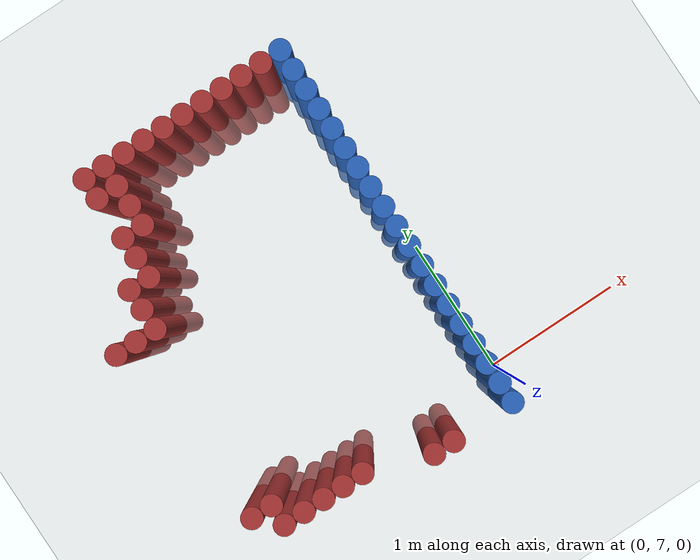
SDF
<sdf version="1.6">
 <world name="default">
  <model name="ground_plane">
   <static>1</static>
   <link name="link">
    <collision name="collision">
     <geometry><plane><normal>0 0 1</normal><size>100 100</size></plane></geometry>
     <surface><friction><ode><mu>100</mu><mu2>50</mu2></ode></friction></surface>
    </collision>
    <visual name="visual">
     <cast_shadows>0</cast_shadows>
     <geometry><plane><normal>0 0 1</normal><size>100 100</size></plane></geometry>
     <material>
      <script><uri>file://media/materials/scripts/gazebo.material</uri><name>Gazebo/Grey</name></script>
     </material>
    </visual>
   </link>
  </model>
  <model name="unit_cylinder_214">
   <static>1</static>
   <pose>-2.025000 8.475000 0.000000 0.000000 0.000000 0.000000</pose>
   <link name="link">
    <inertial>
     <mass>1</mass>
     <inertia><ixx>0.145833</ixx><ixy>0</ixy><ixz>0</ixz><iyy>0.145833</iyy><iyz>0</iyz><izz>0.125</izz></inertia>
    </inertial>
    <collision name="collision">
     <geometry><cylinder><radius>0.075000</radius><length>1</length></cylinder></geometry>
    </collision>
    <visual name="visual">
     <geometry><cylinder><radius>0.075000</radius><length>1</length></cylinder></geometry>
     <material>
      <ambient>0.648000 0.192000 0.192000 1</ambient>
      <diffuse>0.648000 0.192000 0.192000 1</diffuse>
     </material>
     <material>
      <script><name>Gazebo/Grey</name><uri>file://media/materials/scripts/gazebo.material</uri></script>
     </material>
    </visual>
   </link>
  </model>
  <model name="unit_cylinder_221">
   <static>1</static>
   <pose>-1.875000 7.125000 0.000000 0.000000 0.000000 0.000000</pose>
   <link name="link">
    <inertial>
     <mass>1</mass>
     <inertia><ixx>0.145833</ixx><ixy>0</ixy><ixz>0</ixz><iyy>0.145833</iyy><iyz>0</iyz><izz>0.125</izz></inertia>
    </inertial>
    <collision name="collision">
     <geometry><cylinder><radius>0.075000</radius><length>1</length></cylinder></geometry>
    </collision>
    <visual name="visual">
     <geometry><cylinder><radius>0.075000</radius><length>1</length></cylinder></geometry>
     <material>
      <ambient>0.648000 0.192000 0.192000 1</ambient>
      <diffuse>0.648000 0.192000 0.192000 1</diffuse>
     </material>
     <material>
      <script><name>Gazebo/Grey</name><uri>file://media/materials/scripts/gazebo.material</uri></script>
     </material>
    </visual>
   </link>
  </model>
  <model name="unit_cylinder_222">
   <static>1</static>
   <pose>-1.875000 8.475000 0.000000 0.000000 0.000000 0.000000</pose>
   <link name="link">
    <inertial>
     <mass>1</mass>
     <inertia><ixx>0.145833</ixx><ixy>0</ixy><ixz>0</ixz><iyy>0.145833</iyy><iyz>0</iyz><izz>0.125</izz></inertia>
    </inertial>
    <collision name="collision">
     <geometry><cylinder><radius>0.075000</radius><length>1</length></cylinder></geometry>
    </collision>
    <visual name="visual">
     <geometry><cylinder><radius>0.075000</radius><length>1</length></cylinder></geometry>
     <material>
      <ambient>0.648000 0.192000 0.192000 1</ambient>
      <diffuse>0.648000 0.192000 0.192000 1</diffuse>
     </material>
     <material>
      <script><name>Gazebo/Grey</name><uri>file://media/materials/scripts/gazebo.material</uri></script>
     </material>
    </visual>
   </link>
  </model>
  <model name="unit_cylinder_229">
   <static>1</static>
   <pose>-1.725000 6.975000 0.000000 0.000000 0.000000 0.000000</pose>
   <link name="link">
    <inertial>
     <mass>1</mass>
     <inertia><ixx>0.145833</ixx><ixy>0</ixy><ixz>0</ixz><iyy>0.145833</iyy><iyz>0</iyz><izz>0.125</izz></inertia>
    </inertial>
    <collision name="collision">
     <geometry><cylinder><radius>0.075000</radius><length>1</length></cylinder></geometry>
    </collision>
    <visual name="visual">
     <geometry><cylinder><radius>0.075000</radius><length>1</length></cylinder></geometry>
     <material>
      <ambient>0.648000 0.192000 0.192000 1</ambient>
      <diffuse>0.648000 0.192000 0.192000 1</diffuse>
     </material>
     <material>
      <script><name>Gazebo/Grey</name><uri>file://media/materials/scripts/gazebo.material</uri></script>
     </material>
    </visual>
   </link>
  </model>
  <model name="unit_cylinder_230">
   <static>1</static>
   <pose>-1.725000 7.125000 0.000000 0.000000 0.000000 0.000000</pose>
   <link name="link">
    <inertial>
     <mass>1</mass>
     <inertia><ixx>0.145833</ixx><ixy>0</ixy><ixz>0</ixz><iyy>0.145833</iyy><iyz>0</iyz><izz>0.125</izz></inertia>
    </inertial>
    <collision name="collision">
     <geometry><cylinder><radius>0.075000</radius><length>1</length></cylinder></geometry>
    </collision>
    <visual name="visual">
     <geometry><cylinder><radius>0.075000</radius><length>1</length></cylinder></geometry>
     <material>
      <ambient>0.648000 0.192000 0.192000 1</ambient>
      <diffuse>0.648000 0.192000 0.192000 1</diffuse>
     </material>
     <material>
      <script><name>Gazebo/Grey</name><uri>file://media/materials/scripts/gazebo.material</uri></script>
     </material>
    </visual>
   </link>
  </model>
  <model name="unit_cylinder_231">
   <static>1</static>
   <pose>-1.725000 8.475000 0.000000 0.000000 0.000000 0.000000</pose>
   <link name="link">
    <inertial>
     <mass>1</mass>
     <inertia><ixx>0.145833</ixx><ixy>0</ixy><ixz>0</ixz><iyy>0.145833</iyy><iyz>0</iyz><izz>0.125</izz></inertia>
    </inertial>
    <collision name="collision">
     <geometry><cylinder><radius>0.075000</radius><length>1</length></cylinder></geometry>
    </collision>
    <visual name="visual">
     <geometry><cylinder><radius>0.075000</radius><length>1</length></cylinder></geometry>
     <material>
      <ambient>0.648000 0.192000 0.192000 1</ambient>
      <diffuse>0.648000 0.192000 0.192000 1</diffuse>
     </material>
     <material>
      <script><name>Gazebo/Grey</name><uri>file://media/materials/scripts/gazebo.material</uri></script>
     </material>
    </visual>
   </link>
  </model>
  <model name="unit_cylinder_232">
   <static>1</static>
   <pose>-1.725000 8.625000 0.000000 0.000000 0.000000 0.000000</pose>
   <link name="link">
    <inertial>
     <mass>1</mass>
     <inertia><ixx>0.145833</ixx><ixy>0</ixy><ixz>0</ixz><iyy>0.145833</iyy><iyz>0</iyz><izz>0.125</izz></inertia>
    </inertial>
    <collision name="collision">
     <geometry><cylinder><radius>0.075000</radius><length>1</length></cylinder></geometry>
    </collision>
    <visual name="visual">
     <geometry><cylinder><radius>0.075000</radius><length>1</length></cylinder></geometry>
     <material>
      <ambient>0.648000 0.192000 0.192000 1</ambient>
      <diffuse>0.648000 0.192000 0.192000 1</diffuse>
     </material>
     <material>
      <script><name>Gazebo/Grey</name><uri>file://media/materials/scripts/gazebo.material</uri></script>
     </material>
    </visual>
   </link>
  </model>
  <model name="unit_cylinder_233">
   <static>1</static>
   <pose>-1.725000 8.775000 0.000000 0.000000 0.000000 0.000000</pose>
   <link name="link">
    <inertial>
     <mass>1</mass>
     <inertia><ixx>0.145833</ixx><ixy>0</ixy><ixz>0</ixz><iyy>0.145833</iyy><iyz>0</iyz><izz>0.125</izz></inertia>
    </inertial>
    <collision name="collision">
     <geometry><cylinder><radius>0.075000</radius><length>1</length></cylinder></geometry>
    </collision>
    <visual name="visual">
     <geometry><cylinder><radius>0.075000</radius><length>1</length></cylinder></geometry>
     <material>
      <ambient>0.648000 0.192000 0.192000 1</ambient>
      <diffuse>0.648000 0.192000 0.192000 1</diffuse>
     </material>
     <material>
      <script><name>Gazebo/Grey</name><uri>file://media/materials/scripts/gazebo.material</uri></script>
     </material>
    </visual>
   </link>
  </model>
  <model name="unit_cylinder_244">
   <static>1</static>
   <pose>-1.575000 6.975000 0.000000 0.000000 0.000000 0.000000</pose>
   <link name="link">
    <inertial>
     <mass>1</mass>
     <inertia><ixx>0.145833</ixx><ixy>0</ixy><ixz>0</ixz><iyy>0.145833</iyy><iyz>0</iyz><izz>0.125</izz></inertia>
    </inertial>
    <collision name="collision">
     <geometry><cylinder><radius>0.075000</radius><length>1</length></cylinder></geometry>
    </collision>
    <visual name="visual">
     <geometry><cylinder><radius>0.075000</radius><length>1</length></cylinder></geometry>
     <material>
      <ambient>0.648000 0.192000 0.192000 1</ambient>
      <diffuse>0.648000 0.192000 0.192000 1</diffuse>
     </material>
     <material>
      <script><name>Gazebo/Grey</name><uri>file://media/materials/scripts/gazebo.material</uri></script>
     </material>
    </visual>
   </link>
  </model>
  <model name="unit_cylinder_245">
   <static>1</static>
   <pose>-1.575000 8.775000 0.000000 0.000000 0.000000 0.000000</pose>
   <link name="link">
    <inertial>
     <mass>1</mass>
     <inertia><ixx>0.145833</ixx><ixy>0</ixy><ixz>0</ixz><iyy>0.145833</iyy><iyz>0</iyz><izz>0.125</izz></inertia>
    </inertial>
    <collision name="collision">
     <geometry><cylinder><radius>0.075000</radius><length>1</length></cylinder></geometry>
    </collision>
    <visual name="visual">
     <geometry><cylinder><radius>0.075000</radius><length>1</length></cylinder></geometry>
     <material>
      <ambient>0.648000 0.192000 0.192000 1</ambient>
      <diffuse>0.648000 0.192000 0.192000 1</diffuse>
     </material>
     <material>
      <script><name>Gazebo/Grey</name><uri>file://media/materials/scripts/gazebo.material</uri></script>
     </material>
    </visual>
   </link>
  </model>
  <model name="unit_cylinder_246">
   <static>1</static>
   <pose>-1.575000 8.925000 0.000000 0.000000 0.000000 0.000000</pose>
   <link name="link">
    <inertial>
     <mass>1</mass>
     <inertia><ixx>0.145833</ixx><ixy>0</ixy><ixz>0</ixz><iyy>0.145833</iyy><iyz>0</iyz><izz>0.125</izz></inertia>
    </inertial>
    <collision name="collision">
     <geometry><cylinder><radius>0.075000</radius><length>1</length></cylinder></geometry>
    </collision>
    <visual name="visual">
     <geometry><cylinder><radius>0.075000</radius><length>1</length></cylinder></geometry>
     <material>
      <ambient>0.648000 0.192000 0.192000 1</ambient>
      <diffuse>0.648000 0.192000 0.192000 1</diffuse>
     </material>
     <material>
      <script><name>Gazebo/Grey</name><uri>file://media/materials/scripts/gazebo.material</uri></script>
     </material>
    </visual>
   </link>
  </model>
  <model name="unit_cylinder_247">
   <static>1</static>
   <pose>-1.575000 9.075000 0.000000 0.000000 0.000000 0.000000</pose>
   <link name="link">
    <inertial>
     <mass>1</mass>
     <inertia><ixx>0.145833</ixx><ixy>0</ixy><ixz>0</ixz><iyy>0.145833</iyy><iyz>0</iyz><izz>0.125</izz></inertia>
    </inertial>
    <collision name="collision">
     <geometry><cylinder><radius>0.075000</radius><length>1</length></cylinder></geometry>
    </collision>
    <visual name="visual">
     <geometry><cylinder><radius>0.075000</radius><length>1</length></cylinder></geometry>
     <material>
      <ambient>0.648000 0.192000 0.192000 1</ambient>
      <diffuse>0.648000 0.192000 0.192000 1</diffuse>
     </material>
     <material>
      <script><name>Gazebo/Grey</name><uri>file://media/materials/scripts/gazebo.material</uri></script>
     </material>
    </visual>
   </link>
  </model>
  <model name="unit_cylinder_248">
   <static>1</static>
   <pose>-1.575000 9.375000 0.000000 0.000000 0.000000 0.000000</pose>
   <link name="link">
    <inertial>
     <mass>1</mass>
     <inertia><ixx>0.145833</ixx><ixy>0</ixy><ixz>0</ixz><iyy>0.145833</iyy><iyz>0</iyz><izz>0.125</izz></inertia>
    </inertial>
    <collision name="collision">
     <geometry><cylinder><radius>0.075000</radius><length>1</length></cylinder></geometry>
    </collision>
    <visual name="visual">
     <geometry><cylinder><radius>0.075000</radius><length>1</length></cylinder></geometry>
     <material>
      <ambient>0.648000 0.192000 0.192000 1</ambient>
      <diffuse>0.648000 0.192000 0.192000 1</diffuse>
     </material>
     <material>
      <script><name>Gazebo/Grey</name><uri>file://media/materials/scripts/gazebo.material</uri></script>
     </material>
    </visual>
   </link>
  </model>
  <model name="unit_cylinder_249">
   <static>1</static>
   <pose>-1.575000 9.525000 0.000000 0.000000 0.000000 0.000000</pose>
   <link name="link">
    <inertial>
     <mass>1</mass>
     <inertia><ixx>0.145833</ixx><ixy>0</ixy><ixz>0</ixz><iyy>0.145833</iyy><iyz>0</iyz><izz>0.125</izz></inertia>
    </inertial>
    <collision name="collision">
     <geometry><cylinder><radius>0.075000</radius><length>1</length></cylinder></geometry>
    </collision>
    <visual name="visual">
     <geometry><cylinder><radius>0.075000</radius><length>1</length></cylinder></geometry>
     <material>
      <ambient>0.648000 0.192000 0.192000 1</ambient>
      <diffuse>0.648000 0.192000 0.192000 1</diffuse>
     </material>
     <material>
      <script><name>Gazebo/Grey</name><uri>file://media/materials/scripts/gazebo.material</uri></script>
     </material>
    </visual>
   </link>
  </model>
  <model name="unit_cylinder_258">
   <static>1</static>
   <pose>-1.425000 6.975000 0.000000 0.000000 0.000000 0.000000</pose>
   <link name="link">
    <inertial>
     <mass>1</mass>
     <inertia><ixx>0.145833</ixx><ixy>0</ixy><ixz>0</ixz><iyy>0.145833</iyy><iyz>0</iyz><izz>0.125</izz></inertia>
    </inertial>
    <collision name="collision">
     <geometry><cylinder><radius>0.075000</radius><length>1</length></cylinder></geometry>
    </collision>
    <visual name="visual">
     <geometry><cylinder><radius>0.075000</radius><length>1</length></cylinder></geometry>
     <material>
      <ambient>0.648000 0.192000 0.192000 1</ambient>
      <diffuse>0.648000 0.192000 0.192000 1</diffuse>
     </material>
     <material>
      <script><name>Gazebo/Grey</name><uri>file://media/materials/scripts/gazebo.material</uri></script>
     </material>
    </visual>
   </link>
  </model>
  <model name="unit_cylinder_259">
   <static>1</static>
   <pose>-1.425000 9.075000 0.000000 0.000000 0.000000 0.000000</pose>
   <link name="link">
    <inertial>
     <mass>1</mass>
     <inertia><ixx>0.145833</ixx><ixy>0</ixy><ixz>0</ixz><iyy>0.145833</iyy><iyz>0</iyz><izz>0.125</izz></inertia>
    </inertial>
    <collision name="collision">
     <geometry><cylinder><radius>0.075000</radius><length>1</length></cylinder></geometry>
    </collision>
    <visual name="visual">
     <geometry><cylinder><radius>0.075000</radius><length>1</length></cylinder></geometry>
     <material>
      <ambient>0.648000 0.192000 0.192000 1</ambient>
      <diffuse>0.648000 0.192000 0.192000 1</diffuse>
     </material>
     <material>
      <script><name>Gazebo/Grey</name><uri>file://media/materials/scripts/gazebo.material</uri></script>
     </material>
    </visual>
   </link>
  </model>
  <model name="unit_cylinder_260">
   <static>1</static>
   <pose>-1.425000 9.225000 0.000000 0.000000 0.000000 0.000000</pose>
   <link name="link">
    <inertial>
     <mass>1</mass>
     <inertia><ixx>0.145833</ixx><ixy>0</ixy><ixz>0</ixz><iyy>0.145833</iyy><iyz>0</iyz><izz>0.125</izz></inertia>
    </inertial>
    <collision name="collision">
     <geometry><cylinder><radius>0.075000</radius><length>1</length></cylinder></geometry>
    </collision>
    <visual name="visual">
     <geometry><cylinder><radius>0.075000</radius><length>1</length></cylinder></geometry>
     <material>
      <ambient>0.648000 0.192000 0.192000 1</ambient>
      <diffuse>0.648000 0.192000 0.192000 1</diffuse>
     </material>
     <material>
      <script><name>Gazebo/Grey</name><uri>file://media/materials/scripts/gazebo.material</uri></script>
     </material>
    </visual>
   </link>
  </model>
  <model name="unit_cylinder_261">
   <static>1</static>
   <pose>-1.425000 9.375000 0.000000 0.000000 0.000000 0.000000</pose>
   <link name="link">
    <inertial>
     <mass>1</mass>
     <inertia><ixx>0.145833</ixx><ixy>0</ixy><ixz>0</ixz><iyy>0.145833</iyy><iyz>0</iyz><izz>0.125</izz></inertia>
    </inertial>
    <collision name="collision">
     <geometry><cylinder><radius>0.075000</radius><length>1</length></cylinder></geometry>
    </collision>
    <visual name="visual">
     <geometry><cylinder><radius>0.075000</radius><length>1</length></cylinder></geometry>
     <material>
      <ambient>0.648000 0.192000 0.192000 1</ambient>
      <diffuse>0.648000 0.192000 0.192000 1</diffuse>
     </material>
     <material>
      <script><name>Gazebo/Grey</name><uri>file://media/materials/scripts/gazebo.material</uri></script>
     </material>
    </visual>
   </link>
  </model>
  <model name="unit_cylinder_262">
   <static>1</static>
   <pose>-1.425000 9.525000 0.000000 0.000000 0.000000 0.000000</pose>
   <link name="link">
    <inertial>
     <mass>1</mass>
     <inertia><ixx>0.145833</ixx><ixy>0</ixy><ixz>0</ixz><iyy>0.145833</iyy><iyz>0</iyz><izz>0.125</izz></inertia>
    </inertial>
    <collision name="collision">
     <geometry><cylinder><radius>0.075000</radius><length>1</length></cylinder></geometry>
    </collision>
    <visual name="visual">
     <geometry><cylinder><radius>0.075000</radius><length>1</length></cylinder></geometry>
     <material>
      <ambient>0.648000 0.192000 0.192000 1</ambient>
      <diffuse>0.648000 0.192000 0.192000 1</diffuse>
     </material>
     <material>
      <script><name>Gazebo/Grey</name><uri>file://media/materials/scripts/gazebo.material</uri></script>
     </material>
    </visual>
   </link>
  </model>
  <model name="unit_cylinder_264">
   <static>1</static>
   <pose>-1.275000 6.975000 0.000000 0.000000 0.000000 0.000000</pose>
   <link name="link">
    <inertial>
     <mass>1</mass>
     <inertia><ixx>0.145833</ixx><ixy>0</ixy><ixz>0</ixz><iyy>0.145833</iyy><iyz>0</iyz><izz>0.125</izz></inertia>
    </inertial>
    <collision name="collision">
     <geometry><cylinder><radius>0.075000</radius><length>1</length></cylinder></geometry>
    </collision>
    <visual name="visual">
     <geometry><cylinder><radius>0.075000</radius><length>1</length></cylinder></geometry>
     <material>
      <ambient>0.648000 0.192000 0.192000 1</ambient>
      <diffuse>0.648000 0.192000 0.192000 1</diffuse>
     </material>
     <material>
      <script><name>Gazebo/Grey</name><uri>file://media/materials/scripts/gazebo.material</uri></script>
     </material>
    </visual>
   </link>
  </model>
  <model name="unit_cylinder_265">
   <static>1</static>
   <pose>-1.275000 9.525000 0.000000 0.000000 0.000000 0.000000</pose>
   <link name="link">
    <inertial>
     <mass>1</mass>
     <inertia><ixx>0.145833</ixx><ixy>0</ixy><ixz>0</ixz><iyy>0.145833</iyy><iyz>0</iyz><izz>0.125</izz></inertia>
    </inertial>
    <collision name="collision">
     <geometry><cylinder><radius>0.075000</radius><length>1</length></cylinder></geometry>
    </collision>
    <visual name="visual">
     <geometry><cylinder><radius>0.075000</radius><length>1</length></cylinder></geometry>
     <material>
      <ambient>0.648000 0.192000 0.192000 1</ambient>
      <diffuse>0.648000 0.192000 0.192000 1</diffuse>
     </material>
     <material>
      <script><name>Gazebo/Grey</name><uri>file://media/materials/scripts/gazebo.material</uri></script>
     </material>
    </visual>
   </link>
  </model>
  <model name="unit_cylinder_270">
   <static>1</static>
   <pose>-1.125000 6.975000 0.000000 0.000000 0.000000 0.000000</pose>
   <link name="link">
    <inertial>
     <mass>1</mass>
     <inertia><ixx>0.145833</ixx><ixy>0</ixy><ixz>0</ixz><iyy>0.145833</iyy><iyz>0</iyz><izz>0.125</izz></inertia>
    </inertial>
    <collision name="collision">
     <geometry><cylinder><radius>0.075000</radius><length>1</length></cylinder></geometry>
    </collision>
    <visual name="visual">
     <geometry><cylinder><radius>0.075000</radius><length>1</length></cylinder></geometry>
     <material>
      <ambient>0.648000 0.192000 0.192000 1</ambient>
      <diffuse>0.648000 0.192000 0.192000 1</diffuse>
     </material>
     <material>
      <script><name>Gazebo/Grey</name><uri>file://media/materials/scripts/gazebo.material</uri></script>
     </material>
    </visual>
   </link>
  </model>
  <model name="unit_cylinder_271">
   <static>1</static>
   <pose>-1.125000 9.525000 0.000000 0.000000 0.000000 0.000000</pose>
   <link name="link">
    <inertial>
     <mass>1</mass>
     <inertia><ixx>0.145833</ixx><ixy>0</ixy><ixz>0</ixz><iyy>0.145833</iyy><iyz>0</iyz><izz>0.125</izz></inertia>
    </inertial>
    <collision name="collision">
     <geometry><cylinder><radius>0.075000</radius><length>1</length></cylinder></geometry>
    </collision>
    <visual name="visual">
     <geometry><cylinder><radius>0.075000</radius><length>1</length></cylinder></geometry>
     <material>
      <ambient>0.648000 0.192000 0.192000 1</ambient>
      <diffuse>0.648000 0.192000 0.192000 1</diffuse>
     </material>
     <material>
      <script><name>Gazebo/Grey</name><uri>file://media/materials/scripts/gazebo.material</uri></script>
     </material>
    </visual>
   </link>
  </model>
  <model name="unit_cylinder_280">
   <static>1</static>
   <pose>-0.975000 9.525000 0.000000 0.000000 0.000000 0.000000</pose>
   <link name="link">
    <inertial>
     <mass>1</mass>
     <inertia><ixx>0.145833</ixx><ixy>0</ixy><ixz>0</ixz><iyy>0.145833</iyy><iyz>0</iyz><izz>0.125</izz></inertia>
    </inertial>
    <collision name="collision">
     <geometry><cylinder><radius>0.075000</radius><length>1</length></cylinder></geometry>
    </collision>
    <visual name="visual">
     <geometry><cylinder><radius>0.075000</radius><length>1</length></cylinder></geometry>
     <material>
      <ambient>0.648000 0.192000 0.192000 1</ambient>
      <diffuse>0.648000 0.192000 0.192000 1</diffuse>
     </material>
     <material>
      <script><name>Gazebo/Grey</name><uri>file://media/materials/scripts/gazebo.material</uri></script>
     </material>
    </visual>
   </link>
  </model>
  <model name="unit_cylinder_288">
   <static>1</static>
   <pose>-0.825000 9.525000 0.000000 0.000000 0.000000 0.000000</pose>
   <link name="link">
    <inertial>
     <mass>1</mass>
     <inertia><ixx>0.145833</ixx><ixy>0</ixy><ixz>0</ixz><iyy>0.145833</iyy><iyz>0</iyz><izz>0.125</izz></inertia>
    </inertial>
    <collision name="collision">
     <geometry><cylinder><radius>0.075000</radius><length>1</length></cylinder></geometry>
    </collision>
    <visual name="visual">
     <geometry><cylinder><radius>0.075000</radius><length>1</length></cylinder></geometry>
     <material>
      <ambient>0.648000 0.192000 0.192000 1</ambient>
      <diffuse>0.648000 0.192000 0.192000 1</diffuse>
     </material>
     <material>
      <script><name>Gazebo/Grey</name><uri>file://media/materials/scripts/gazebo.material</uri></script>
     </material>
    </visual>
   </link>
  </model>
  <model name="unit_cylinder_294">
   <static>1</static>
   <pose>-0.675000 6.825000 0.000000 0.000000 0.000000 0.000000</pose>
   <link name="link">
    <inertial>
     <mass>1</mass>
     <inertia><ixx>0.145833</ixx><ixy>0</ixy><ixz>0</ixz><iyy>0.145833</iyy><iyz>0</iyz><izz>0.125</izz></inertia>
    </inertial>
    <collision name="collision">
     <geometry><cylinder><radius>0.075000</radius><length>1</length></cylinder></geometry>
    </collision>
    <visual name="visual">
     <geometry><cylinder><radius>0.075000</radius><length>1</length></cylinder></geometry>
     <material>
      <ambient>0.648000 0.192000 0.192000 1</ambient>
      <diffuse>0.648000 0.192000 0.192000 1</diffuse>
     </material>
     <material>
      <script><name>Gazebo/Grey</name><uri>file://media/materials/scripts/gazebo.material</uri></script>
     </material>
    </visual>
   </link>
  </model>
  <model name="unit_cylinder_295">
   <static>1</static>
   <pose>-0.675000 9.525000 0.000000 0.000000 0.000000 0.000000</pose>
   <link name="link">
    <inertial>
     <mass>1</mass>
     <inertia><ixx>0.145833</ixx><ixy>0</ixy><ixz>0</ixz><iyy>0.145833</iyy><iyz>0</iyz><izz>0.125</izz></inertia>
    </inertial>
    <collision name="collision">
     <geometry><cylinder><radius>0.075000</radius><length>1</length></cylinder></geometry>
    </collision>
    <visual name="visual">
     <geometry><cylinder><radius>0.075000</radius><length>1</length></cylinder></geometry>
     <material>
      <ambient>0.648000 0.192000 0.192000 1</ambient>
      <diffuse>0.648000 0.192000 0.192000 1</diffuse>
     </material>
     <material>
      <script><name>Gazebo/Grey</name><uri>file://media/materials/scripts/gazebo.material</uri></script>
     </material>
    </visual>
   </link>
  </model>
  <model name="unit_cylinder_305">
   <static>1</static>
   <pose>-0.525000 6.825000 0.000000 0.000000 0.000000 0.000000</pose>
   <link name="link">
    <inertial>
     <mass>1</mass>
     <inertia><ixx>0.145833</ixx><ixy>0</ixy><ixz>0</ixz><iyy>0.145833</iyy><iyz>0</iyz><izz>0.125</izz></inertia>
    </inertial>
    <collision name="collision">
     <geometry><cylinder><radius>0.075000</radius><length>1</length></cylinder></geometry>
    </collision>
    <visual name="visual">
     <geometry><cylinder><radius>0.075000</radius><length>1</length></cylinder></geometry>
     <material>
      <ambient>0.648000 0.192000 0.192000 1</ambient>
      <diffuse>0.648000 0.192000 0.192000 1</diffuse>
     </material>
     <material>
      <script><name>Gazebo/Grey</name><uri>file://media/materials/scripts/gazebo.material</uri></script>
     </material>
    </visual>
   </link>
  </model>
  <model name="unit_cylinder_306">
   <static>1</static>
   <pose>-0.525000 9.525000 0.000000 0.000000 0.000000 0.000000</pose>
   <link name="link">
    <inertial>
     <mass>1</mass>
     <inertia><ixx>0.145833</ixx><ixy>0</ixy><ixz>0</ixz><iyy>0.145833</iyy><iyz>0</iyz><izz>0.125</izz></inertia>
    </inertial>
    <collision name="collision">
     <geometry><cylinder><radius>0.075000</radius><length>1</length></cylinder></geometry>
    </collision>
    <visual name="visual">
     <geometry><cylinder><radius>0.075000</radius><length>1</length></cylinder></geometry>
     <material>
      <ambient>0.648000 0.192000 0.192000 1</ambient>
      <diffuse>0.648000 0.192000 0.192000 1</diffuse>
     </material>
     <material>
      <script><name>Gazebo/Grey</name><uri>file://media/materials/scripts/gazebo.material</uri></script>
     </material>
    </visual>
   </link>
  </model>
  <model name="unit_cylinder_314">
   <static>1</static>
   <pose>-0.375000 9.525000 0.000000 0.000000 0.000000 0.000000</pose>
   <link name="link">
    <inertial>
     <mass>1</mass>
     <inertia><ixx>0.145833</ixx><ixy>0</ixy><ixz>0</ixz><iyy>0.145833</iyy><iyz>0</iyz><izz>0.125</izz></inertia>
    </inertial>
    <collision name="collision">
     <geometry><cylinder><radius>0.075000</radius><length>1</length></cylinder></geometry>
    </collision>
    <visual name="visual">
     <geometry><cylinder><radius>0.075000</radius><length>1</length></cylinder></geometry>
     <material>
      <ambient>0.648000 0.192000 0.192000 1</ambient>
      <diffuse>0.648000 0.192000 0.192000 1</diffuse>
     </material>
     <material>
      <script><name>Gazebo/Grey</name><uri>file://media/materials/scripts/gazebo.material</uri></script>
     </material>
    </visual>
   </link>
  </model>
  <model name="unit_cylinder_317">
   <static>1</static>
   <pose>-0.225000 9.525000 0.000000 0.000000 0.000000 0.000000</pose>
   <link name="link">
    <inertial>
     <mass>1</mass>
     <inertia><ixx>0.145833</ixx><ixy>0</ixy><ixz>0</ixz><iyy>0.145833</iyy><iyz>0</iyz><izz>0.125</izz></inertia>
    </inertial>
    <collision name="collision">
     <geometry><cylinder><radius>0.075000</radius><length>1</length></cylinder></geometry>
    </collision>
    <visual name="visual">
     <geometry><cylinder><radius>0.075000</radius><length>1</length></cylinder></geometry>
     <material>
      <ambient>0.648000 0.192000 0.192000 1</ambient>
      <diffuse>0.648000 0.192000 0.192000 1</diffuse>
     </material>
     <material>
      <script><name>Gazebo/Grey</name><uri>file://media/materials/scripts/gazebo.material</uri></script>
     </material>
    </visual>
   </link>
  </model>
  <model name="unit_cylinder_329">
   <static>1</static>
   <pose>-0.075000 6.825000 0.000000 0.000000 0.000000 0.000000</pose>
   <link name="link">
    <inertial>
     <mass>1</mass>
     <inertia><ixx>0.145833</ixx><ixy>0</ixy><ixz>0</ixz><iyy>0.145833</iyy><iyz>0</iyz><izz>0.125</izz></inertia>
    </inertial>
    <collision name="collision">
     <geometry><cylinder><radius>0.075000</radius><length>1</length></cylinder></geometry>
    </collision>
    <visual name="visual">
     <geometry><cylinder><radius>0.075000</radius><length>1</length></cylinder></geometry>
     <material>
      <ambient>0.152000 0.379000 0.720000 1</ambient>
      <diffuse>0.152000 0.379000 0.720000 1</diffuse>
     </material>
     <material>
      <script><name>Gazebo/Grey</name><uri>file://media/materials/scripts/gazebo.material</uri></script>
     </material>
    </visual>
   </link>
  </model>
  <model name="unit_cylinder_330">
   <static>1</static>
   <pose>-0.075000 6.975000 0.000000 0.000000 0.000000 0.000000</pose>
   <link name="link">
    <inertial>
     <mass>1</mass>
     <inertia><ixx>0.145833</ixx><ixy>0</ixy><ixz>0</ixz><iyy>0.145833</iyy><iyz>0</iyz><izz>0.125</izz></inertia>
    </inertial>
    <collision name="collision">
     <geometry><cylinder><radius>0.075000</radius><length>1</length></cylinder></geometry>
    </collision>
    <visual name="visual">
     <geometry><cylinder><radius>0.075000</radius><length>1</length></cylinder></geometry>
     <material>
      <ambient>0.152000 0.379000 0.720000 1</ambient>
      <diffuse>0.152000 0.379000 0.720000 1</diffuse>
     </material>
     <material>
      <script><name>Gazebo/Grey</name><uri>file://media/materials/scripts/gazebo.material</uri></script>
     </material>
    </visual>
   </link>
  </model>
  <model name="unit_cylinder_331">
   <static>1</static>
   <pose>-0.075000 7.125000 0.000000 0.000000 0.000000 0.000000</pose>
   <link name="link">
    <inertial>
     <mass>1</mass>
     <inertia><ixx>0.145833</ixx><ixy>0</ixy><ixz>0</ixz><iyy>0.145833</iyy><iyz>0</iyz><izz>0.125</izz></inertia>
    </inertial>
    <collision name="collision">
     <geometry><cylinder><radius>0.075000</radius><length>1</length></cylinder></geometry>
    </collision>
    <visual name="visual">
     <geometry><cylinder><radius>0.075000</radius><length>1</length></cylinder></geometry>
     <material>
      <ambient>0.152000 0.379000 0.720000 1</ambient>
      <diffuse>0.152000 0.379000 0.720000 1</diffuse>
     </material>
     <material>
      <script><name>Gazebo/Grey</name><uri>file://media/materials/scripts/gazebo.material</uri></script>
     </material>
    </visual>
   </link>
  </model>
  <model name="unit_cylinder_332">
   <static>1</static>
   <pose>-0.075000 7.275000 0.000000 0.000000 0.000000 0.000000</pose>
   <link name="link">
    <inertial>
     <mass>1</mass>
     <inertia><ixx>0.145833</ixx><ixy>0</ixy><ixz>0</ixz><iyy>0.145833</iyy><iyz>0</iyz><izz>0.125</izz></inertia>
    </inertial>
    <collision name="collision">
     <geometry><cylinder><radius>0.075000</radius><length>1</length></cylinder></geometry>
    </collision>
    <visual name="visual">
     <geometry><cylinder><radius>0.075000</radius><length>1</length></cylinder></geometry>
     <material>
      <ambient>0.152000 0.379000 0.720000 1</ambient>
      <diffuse>0.152000 0.379000 0.720000 1</diffuse>
     </material>
     <material>
      <script><name>Gazebo/Grey</name><uri>file://media/materials/scripts/gazebo.material</uri></script>
     </material>
    </visual>
   </link>
  </model>
  <model name="unit_cylinder_333">
   <static>1</static>
   <pose>-0.075000 7.425000 0.000000 0.000000 0.000000 0.000000</pose>
   <link name="link">
    <inertial>
     <mass>1</mass>
     <inertia><ixx>0.145833</ixx><ixy>0</ixy><ixz>0</ixz><iyy>0.145833</iyy><iyz>0</iyz><izz>0.125</izz></inertia>
    </inertial>
    <collision name="collision">
     <geometry><cylinder><radius>0.075000</radius><length>1</length></cylinder></geometry>
    </collision>
    <visual name="visual">
     <geometry><cylinder><radius>0.075000</radius><length>1</length></cylinder></geometry>
     <material>
      <ambient>0.152000 0.379000 0.720000 1</ambient>
      <diffuse>0.152000 0.379000 0.720000 1</diffuse>
     </material>
     <material>
      <script><name>Gazebo/Grey</name><uri>file://media/materials/scripts/gazebo.material</uri></script>
     </material>
    </visual>
   </link>
  </model>
  <model name="unit_cylinder_334">
   <static>1</static>
   <pose>-0.075000 7.575000 0.000000 0.000000 0.000000 0.000000</pose>
   <link name="link">
    <inertial>
     <mass>1</mass>
     <inertia><ixx>0.145833</ixx><ixy>0</ixy><ixz>0</ixz><iyy>0.145833</iyy><iyz>0</iyz><izz>0.125</izz></inertia>
    </inertial>
    <collision name="collision">
     <geometry><cylinder><radius>0.075000</radius><length>1</length></cylinder></geometry>
    </collision>
    <visual name="visual">
     <geometry><cylinder><radius>0.075000</radius><length>1</length></cylinder></geometry>
     <material>
      <ambient>0.152000 0.379000 0.720000 1</ambient>
      <diffuse>0.152000 0.379000 0.720000 1</diffuse>
     </material>
     <material>
      <script><name>Gazebo/Grey</name><uri>file://media/materials/scripts/gazebo.material</uri></script>
     </material>
    </visual>
   </link>
  </model>
  <model name="unit_cylinder_335">
   <static>1</static>
   <pose>-0.075000 7.725000 0.000000 0.000000 0.000000 0.000000</pose>
   <link name="link">
    <inertial>
     <mass>1</mass>
     <inertia><ixx>0.145833</ixx><ixy>0</ixy><ixz>0</ixz><iyy>0.145833</iyy><iyz>0</iyz><izz>0.125</izz></inertia>
    </inertial>
    <collision name="collision">
     <geometry><cylinder><radius>0.075000</radius><length>1</length></cylinder></geometry>
    </collision>
    <visual name="visual">
     <geometry><cylinder><radius>0.075000</radius><length>1</length></cylinder></geometry>
     <material>
      <ambient>0.152000 0.379000 0.720000 1</ambient>
      <diffuse>0.152000 0.379000 0.720000 1</diffuse>
     </material>
     <material>
      <script><name>Gazebo/Grey</name><uri>file://media/materials/scripts/gazebo.material</uri></script>
     </material>
    </visual>
   </link>
  </model>
  <model name="unit_cylinder_336">
   <static>1</static>
   <pose>-0.075000 7.875000 0.000000 0.000000 0.000000 0.000000</pose>
   <link name="link">
    <inertial>
     <mass>1</mass>
     <inertia><ixx>0.145833</ixx><ixy>0</ixy><ixz>0</ixz><iyy>0.145833</iyy><iyz>0</iyz><izz>0.125</izz></inertia>
    </inertial>
    <collision name="collision">
     <geometry><cylinder><radius>0.075000</radius><length>1</length></cylinder></geometry>
    </collision>
    <visual name="visual">
     <geometry><cylinder><radius>0.075000</radius><length>1</length></cylinder></geometry>
     <material>
      <ambient>0.152000 0.379000 0.720000 1</ambient>
      <diffuse>0.152000 0.379000 0.720000 1</diffuse>
     </material>
     <material>
      <script><name>Gazebo/Grey</name><uri>file://media/materials/scripts/gazebo.material</uri></script>
     </material>
    </visual>
   </link>
  </model>
  <model name="unit_cylinder_337">
   <static>1</static>
   <pose>-0.075000 8.025000 0.000000 0.000000 0.000000 0.000000</pose>
   <link name="link">
    <inertial>
     <mass>1</mass>
     <inertia><ixx>0.145833</ixx><ixy>0</ixy><ixz>0</ixz><iyy>0.145833</iyy><iyz>0</iyz><izz>0.125</izz></inertia>
    </inertial>
    <collision name="collision">
     <geometry><cylinder><radius>0.075000</radius><length>1</length></cylinder></geometry>
    </collision>
    <visual name="visual">
     <geometry><cylinder><radius>0.075000</radius><length>1</length></cylinder></geometry>
     <material>
      <ambient>0.152000 0.379000 0.720000 1</ambient>
      <diffuse>0.152000 0.379000 0.720000 1</diffuse>
     </material>
     <material>
      <script><name>Gazebo/Grey</name><uri>file://media/materials/scripts/gazebo.material</uri></script>
     </material>
    </visual>
   </link>
  </model>
  <model name="unit_cylinder_338">
   <static>1</static>
   <pose>-0.075000 8.175000 0.000000 0.000000 0.000000 0.000000</pose>
   <link name="link">
    <inertial>
     <mass>1</mass>
     <inertia><ixx>0.145833</ixx><ixy>0</ixy><ixz>0</ixz><iyy>0.145833</iyy><iyz>0</iyz><izz>0.125</izz></inertia>
    </inertial>
    <collision name="collision">
     <geometry><cylinder><radius>0.075000</radius><length>1</length></cylinder></geometry>
    </collision>
    <visual name="visual">
     <geometry><cylinder><radius>0.075000</radius><length>1</length></cylinder></geometry>
     <material>
      <ambient>0.152000 0.379000 0.720000 1</ambient>
      <diffuse>0.152000 0.379000 0.720000 1</diffuse>
     </material>
     <material>
      <script><name>Gazebo/Grey</name><uri>file://media/materials/scripts/gazebo.material</uri></script>
     </material>
    </visual>
   </link>
  </model>
  <model name="unit_cylinder_339">
   <static>1</static>
   <pose>-0.075000 8.325000 0.000000 0.000000 0.000000 0.000000</pose>
   <link name="link">
    <inertial>
     <mass>1</mass>
     <inertia><ixx>0.145833</ixx><ixy>0</ixy><ixz>0</ixz><iyy>0.145833</iyy><iyz>0</iyz><izz>0.125</izz></inertia>
    </inertial>
    <collision name="collision">
     <geometry><cylinder><radius>0.075000</radius><length>1</length></cylinder></geometry>
    </collision>
    <visual name="visual">
     <geometry><cylinder><radius>0.075000</radius><length>1</length></cylinder></geometry>
     <material>
      <ambient>0.152000 0.379000 0.720000 1</ambient>
      <diffuse>0.152000 0.379000 0.720000 1</diffuse>
     </material>
     <material>
      <script><name>Gazebo/Grey</name><uri>file://media/materials/scripts/gazebo.material</uri></script>
     </material>
    </visual>
   </link>
  </model>
  <model name="unit_cylinder_340">
   <static>1</static>
   <pose>-0.075000 8.475000 0.000000 0.000000 0.000000 0.000000</pose>
   <link name="link">
    <inertial>
     <mass>1</mass>
     <inertia><ixx>0.145833</ixx><ixy>0</ixy><ixz>0</ixz><iyy>0.145833</iyy><iyz>0</iyz><izz>0.125</izz></inertia>
    </inertial>
    <collision name="collision">
     <geometry><cylinder><radius>0.075000</radius><length>1</length></cylinder></geometry>
    </collision>
    <visual name="visual">
     <geometry><cylinder><radius>0.075000</radius><length>1</length></cylinder></geometry>
     <material>
      <ambient>0.152000 0.379000 0.720000 1</ambient>
      <diffuse>0.152000 0.379000 0.720000 1</diffuse>
     </material>
     <material>
      <script><name>Gazebo/Grey</name><uri>file://media/materials/scripts/gazebo.material</uri></script>
     </material>
    </visual>
   </link>
  </model>
  <model name="unit_cylinder_341">
   <static>1</static>
   <pose>-0.075000 8.625000 0.000000 0.000000 0.000000 0.000000</pose>
   <link name="link">
    <inertial>
     <mass>1</mass>
     <inertia><ixx>0.145833</ixx><ixy>0</ixy><ixz>0</ixz><iyy>0.145833</iyy><iyz>0</iyz><izz>0.125</izz></inertia>
    </inertial>
    <collision name="collision">
     <geometry><cylinder><radius>0.075000</radius><length>1</length></cylinder></geometry>
    </collision>
    <visual name="visual">
     <geometry><cylinder><radius>0.075000</radius><length>1</length></cylinder></geometry>
     <material>
      <ambient>0.152000 0.379000 0.720000 1</ambient>
      <diffuse>0.152000 0.379000 0.720000 1</diffuse>
     </material>
     <material>
      <script><name>Gazebo/Grey</name><uri>file://media/materials/scripts/gazebo.material</uri></script>
     </material>
    </visual>
   </link>
  </model>
  <model name="unit_cylinder_342">
   <static>1</static>
   <pose>-0.075000 8.775000 0.000000 0.000000 0.000000 0.000000</pose>
   <link name="link">
    <inertial>
     <mass>1</mass>
     <inertia><ixx>0.145833</ixx><ixy>0</ixy><ixz>0</ixz><iyy>0.145833</iyy><iyz>0</iyz><izz>0.125</izz></inertia>
    </inertial>
    <collision name="collision">
     <geometry><cylinder><radius>0.075000</radius><length>1</length></cylinder></geometry>
    </collision>
    <visual name="visual">
     <geometry><cylinder><radius>0.075000</radius><length>1</length></cylinder></geometry>
     <material>
      <ambient>0.152000 0.379000 0.720000 1</ambient>
      <diffuse>0.152000 0.379000 0.720000 1</diffuse>
     </material>
     <material>
      <script><name>Gazebo/Grey</name><uri>file://media/materials/scripts/gazebo.material</uri></script>
     </material>
    </visual>
   </link>
  </model>
  <model name="unit_cylinder_343">
   <static>1</static>
   <pose>-0.075000 8.925000 0.000000 0.000000 0.000000 0.000000</pose>
   <link name="link">
    <inertial>
     <mass>1</mass>
     <inertia><ixx>0.145833</ixx><ixy>0</ixy><ixz>0</ixz><iyy>0.145833</iyy><iyz>0</iyz><izz>0.125</izz></inertia>
    </inertial>
    <collision name="collision">
     <geometry><cylinder><radius>0.075000</radius><length>1</length></cylinder></geometry>
    </collision>
    <visual name="visual">
     <geometry><cylinder><radius>0.075000</radius><length>1</length></cylinder></geometry>
     <material>
      <ambient>0.152000 0.379000 0.720000 1</ambient>
      <diffuse>0.152000 0.379000 0.720000 1</diffuse>
     </material>
     <material>
      <script><name>Gazebo/Grey</name><uri>file://media/materials/scripts/gazebo.material</uri></script>
     </material>
    </visual>
   </link>
  </model>
  <model name="unit_cylinder_344">
   <static>1</static>
   <pose>-0.075000 9.075000 0.000000 0.000000 0.000000 0.000000</pose>
   <link name="link">
    <inertial>
     <mass>1</mass>
     <inertia><ixx>0.145833</ixx><ixy>0</ixy><ixz>0</ixz><iyy>0.145833</iyy><iyz>0</iyz><izz>0.125</izz></inertia>
    </inertial>
    <collision name="collision">
     <geometry><cylinder><radius>0.075000</radius><length>1</length></cylinder></geometry>
    </collision>
    <visual name="visual">
     <geometry><cylinder><radius>0.075000</radius><length>1</length></cylinder></geometry>
     <material>
      <ambient>0.152000 0.379000 0.720000 1</ambient>
      <diffuse>0.152000 0.379000 0.720000 1</diffuse>
     </material>
     <material>
      <script><name>Gazebo/Grey</name><uri>file://media/materials/scripts/gazebo.material</uri></script>
     </material>
    </visual>
   </link>
  </model>
  <model name="unit_cylinder_345">
   <static>1</static>
   <pose>-0.075000 9.225000 0.000000 0.000000 0.000000 0.000000</pose>
   <link name="link">
    <inertial>
     <mass>1</mass>
     <inertia><ixx>0.145833</ixx><ixy>0</ixy><ixz>0</ixz><iyy>0.145833</iyy><iyz>0</iyz><izz>0.125</izz></inertia>
    </inertial>
    <collision name="collision">
     <geometry><cylinder><radius>0.075000</radius><length>1</length></cylinder></geometry>
    </collision>
    <visual name="visual">
     <geometry><cylinder><radius>0.075000</radius><length>1</length></cylinder></geometry>
     <material>
      <ambient>0.152000 0.379000 0.720000 1</ambient>
      <diffuse>0.152000 0.379000 0.720000 1</diffuse>
     </material>
     <material>
      <script><name>Gazebo/Grey</name><uri>file://media/materials/scripts/gazebo.material</uri></script>
     </material>
    </visual>
   </link>
  </model>
  <model name="unit_cylinder_346">
   <static>1</static>
   <pose>-0.075000 9.375000 0.000000 0.000000 0.000000 0.000000</pose>
   <link name="link">
    <inertial>
     <mass>1</mass>
     <inertia><ixx>0.145833</ixx><ixy>0</ixy><ixz>0</ixz><iyy>0.145833</iyy><iyz>0</iyz><izz>0.125</izz></inertia>
    </inertial>
    <collision name="collision">
     <geometry><cylinder><radius>0.075000</radius><length>1</length></cylinder></geometry>
    </collision>
    <visual name="visual">
     <geometry><cylinder><radius>0.075000</radius><length>1</length></cylinder></geometry>
     <material>
      <ambient>0.152000 0.379000 0.720000 1</ambient>
      <diffuse>0.152000 0.379000 0.720000 1</diffuse>
     </material>
     <material>
      <script><name>Gazebo/Grey</name><uri>file://media/materials/scripts/gazebo.material</uri></script>
     </material>
    </visual>
   </link>
  </model>
  <model name="unit_cylinder_347">
   <static>1</static>
   <pose>-0.075000 9.525000 0.000000 0.000000 0.000000 0.000000</pose>
   <link name="link">
    <inertial>
     <mass>1</mass>
     <inertia><ixx>0.145833</ixx><ixy>0</ixy><ixz>0</ixz><iyy>0.145833</iyy><iyz>0</iyz><izz>0.125</izz></inertia>
    </inertial>
    <collision name="collision">
     <geometry><cylinder><radius>0.075000</radius><length>1</length></cylinder></geometry>
    </collision>
    <visual name="visual">
     <geometry><cylinder><radius>0.075000</radius><length>1</length></cylinder></geometry>
     <material>
      <ambient>0.152000 0.379000 0.720000 1</ambient>
      <diffuse>0.152000 0.379000 0.720000 1</diffuse>
     </material>
     <material>
      <script><name>Gazebo/Grey</name><uri>file://media/materials/scripts/gazebo.material</uri></script>
     </material>
    </visual>
   </link>
  </model>
 </world>
</sdf>
